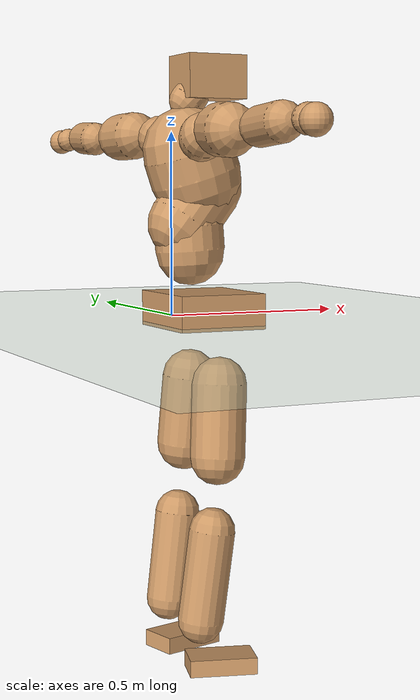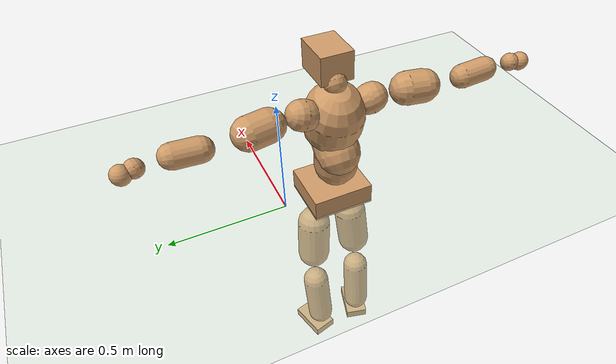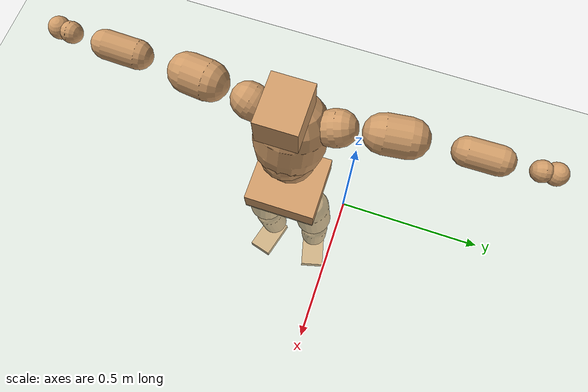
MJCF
<mujoco model="humanoid">
  <compiler coordinate="local" angle="radian"/>
  <default>
    <joint damping="0.0" armature="0.01" stiffness="0.0" limited="true"/>
    <geom conaffinity="1" condim="3" contype="7" margin="0.001" rgba="0.8 0.6 .4 1"/>
  </default>
  <asset>
    <texture type="skybox" builtin="gradient" rgb1=".4 .5 .6" rgb2="0 0 0" width="100" height="100"/>
    <texture builtin="flat" height="1278" mark="cross" markrgb="1 1 1" name="texgeom" random="0.01" rgb1="0.8 0.6 0.4" rgb2="0.8 0.6 0.4" type="cube" width="127"/>
    <texture builtin="checker" height="100" name="texplane" rgb1="0 0 0" rgb2="0.8 0.8 0.8" type="2d" width="100"/>
    <material name="MatPlane" reflectance="0.5" shininess="1" specular="1" texrepeat="60 60" texture="texplane"/>
    <material name="geom" texture="texgeom" texuniform="true"/>
  </asset>
  <worldbody>
    <light cutoff="100" diffuse="1 1 1" dir="-0 0 -1.3" directional="true" exponent="1" pos="0 0 1.3" specular=".1 .1 .1"/>
    <geom conaffinity="1" condim="3" name="floor" pos="0 0 0" rgba="0.8 0.9 0.8 1" size="100 100 .2" type="plane" material="MatPlane"/>
    <body name="Pelvis" pos="0.001 -0.2135 0.0487">
      <freejoint name="Pelvis"/>
      <geom type="box" contype="1" conaffinity="1" density="5359.374832" pos="-0.0049 -0.0000 -0.0141" size="0.1173 0.1291 0.0459" quat="1.0000 0.0000 0.0000 0.0021" name="Pelvis"/>
      <body name="L_Hip" pos="0.0042 0.0843 -0.099">
        <joint name="L_Hip_x" type="hinge" pos="0 0 0" axis="1 0 0" stiffness="1600" damping="160" armature="0.02" range="-180.0000 180.0000"/>
        <joint name="L_Hip_y" type="hinge" pos="0 0 0" axis="0 1 0" stiffness="1600" damping="160" armature="0.02" range="-180.0000 180.0000"/>
        <joint name="L_Hip_z" type="hinge" pos="0 0 0" axis="0 0 1" stiffness="1600" damping="160" armature="0.02" range="-180.0000 180.0000"/>
        <geom type="capsule" contype="1" conaffinity="1" density="2040.816327" size="0.0719" fromto="-0.0064 0.0067 -0.1015 -0.0180 0.0188 -0.2850" name="L_Hip"/>
        <body name="L_Knee" pos="-0.0245 0.0254 -0.3865">
          <joint name="L_Knee_x" type="hinge" pos="0 0 0" axis="1 0 0" stiffness="1600" damping="160" armature="0.02" range="-180.0000 180.0000"/>
          <joint name="L_Knee_y" type="hinge" pos="0 0 0" axis="0 1 0" stiffness="1600" damping="160" armature="0.02" range="-180.0000 180.0000"/>
          <joint name="L_Knee_z" type="hinge" pos="0 0 0" axis="0 0 1" stiffness="1600" damping="160" armature="0.02" range="-180.0000 180.0000"/>
          <geom type="capsule" contype="1" conaffinity="1" density="1234.567901" size="0.0597" fromto="-0.0110 -0.0021 -0.0890 -0.0403 -0.0077 -0.3249" name="L_Knee"/>
          <body name="L_Ankle" pos="-0.0514 -0.0098 -0.4139">
            <joint name="L_Ankle_x" type="hinge" pos="0 0 0" axis="1 0 0" stiffness="1600" damping="160" armature="0.02" range="-180.0000 180.0000"/>
            <joint name="L_Ankle_y" type="hinge" pos="0 0 0" axis="0 1 0" stiffness="1600" damping="160" armature="0.02" range="-180.0000 180.0000"/>
            <joint name="L_Ankle_z" type="hinge" pos="0 0 0" axis="0 0 1" stiffness="1600" damping="160" armature="0.02" range="-180.0000 180.0000"/>
            <geom type="box" contype="1" conaffinity="1" density="999.999943" pos="0.0594 0.0152 -0.0299" size="0.0873 0.0528 0.022" quat="0.9922 0.0000 0.0000 0.1247" name="L_Ankle"/>
            <body name="L_Toe" pos="0.1188 0.0303 -0.0599">
              <joint name="L_Toe_x" type="hinge" pos="0 0 0" axis="1 0 0" stiffness="1000" damping="100" armature="0.02" range="-180.0000 180.0000"/>
              <joint name="L_Toe_y" type="hinge" pos="0 0 0" axis="0 1 0" stiffness="1000" damping="100" armature="0.02" range="-180.0000 180.0000"/>
              <joint name="L_Toe_z" type="hinge" pos="0 0 0" axis="0 0 1" stiffness="1000" damping="100" armature="0.02" range="-180.0000 180.0000"/>
              <geom type="box" contype="1" conaffinity="1" density="8206959.973085" pos="0.0000 0.0000 0.0300" size="0.001 0.0026 0.0011" quat="0.9915 0.0000 0.0000 0.1304" name="L_Toe"/>
            </body>
          </body>
        </body>
      </body>
      <body name="R_Hip" pos="0.0069 -0.0818 -0.1003">
        <joint name="R_Hip_x" type="hinge" pos="0 0 0" axis="1 0 0" stiffness="1600" damping="160" armature="0.02" range="-180.0000 180.0000"/>
        <joint name="R_Hip_y" type="hinge" pos="0 0 0" axis="0 1 0" stiffness="1600" damping="160" armature="0.02" range="-180.0000 180.0000"/>
        <joint name="R_Hip_z" type="hinge" pos="0 0 0" axis="0 0 1" stiffness="1600" damping="160" armature="0.02" range="-180.0000 180.0000"/>
        <geom type="capsule" contype="1" conaffinity="1" density="2040.816327" size="0.0711" fromto="-0.0066 -0.0085 -0.1005 -0.0190 -0.0243 -0.2884" name="R_Hip"/>
        <body name="R_Knee" pos="-0.0257 -0.0328 -0.3889">
          <joint name="R_Knee_x" type="hinge" pos="0 0 0" axis="1 0 0" stiffness="1600" damping="160" armature="0.02" range="-180.0000 180.0000"/>
          <joint name="R_Knee_y" type="hinge" pos="0 0 0" axis="0 1 0" stiffness="1600" damping="160" armature="0.02" range="-180.0000 180.0000"/>
          <joint name="R_Knee_z" type="hinge" pos="0 0 0" axis="0 0 1" stiffness="1600" damping="160" armature="0.02" range="-180.0000 180.0000"/>
          <geom type="capsule" contype="1" conaffinity="1" density="1234.567901" size="0.0594" fromto="-0.0109 0.0026 -0.0886 -0.0402 0.0095 -0.3270" name="R_Knee"/>
          <body name="R_Ankle" pos="-0.0511 0.0121 -0.4157">
            <joint name="R_Ankle_x" type="hinge" pos="0 0 0" axis="1 0 0" stiffness="1600" damping="160" armature="0.02" range="-180.0000 180.0000"/>
            <joint name="R_Ankle_y" type="hinge" pos="0 0 0" axis="0 1 0" stiffness="1600" damping="160" armature="0.02" range="-180.0000 180.0000"/>
            <joint name="R_Ankle_z" type="hinge" pos="0 0 0" axis="0 0 1" stiffness="1600" damping="160" armature="0.02" range="-180.0000 180.0000"/>
            <geom type="box" contype="1" conaffinity="1" density="1000.000038" pos="0.0617 -0.0168 -0.0251" size="0.0879 0.0519 0.022" quat="0.9912 0.0000 0.0000 -0.1325" name="R_Ankle"/>
            <body name="R_Toe" pos="0.1233 -0.0336 -0.0502">
              <joint name="R_Toe_x" type="hinge" pos="0 0 0" axis="1 0 0" stiffness="1000" damping="100" armature="0.02" range="-180.0000 180.0000"/>
              <joint name="R_Toe_y" type="hinge" pos="0 0 0" axis="0 1 0" stiffness="1000" damping="100" armature="0.02" range="-180.0000 180.0000"/>
              <joint name="R_Toe_z" type="hinge" pos="0 0 0" axis="0 0 1" stiffness="1000" damping="100" armature="0.02" range="-180.0000 180.0000"/>
              <geom type="box" contype="1" conaffinity="1" density="7687597.521562" pos="0.0000 0.0000 0.0274" size="0.001 0.0025 0.0012" quat="0.9924 0.0000 0.0000 -0.1231" name="R_Toe"/>
            </body>
          </body>
        </body>
      </body>
      <body name="Torso" pos="-0.0404 -0.0027 0.1147">
        <joint name="Torso_x" type="hinge" pos="0 0 0" axis="1 0 0" stiffness="2000" damping="200" armature="0.02" range="-180.0000 180.0000"/>
        <joint name="Torso_y" type="hinge" pos="0 0 0" axis="0 1 0" stiffness="2000" damping="200" armature="0.02" range="-180.0000 180.0000"/>
        <joint name="Torso_z" type="hinge" pos="0 0 0" axis="0 0 1" stiffness="2000" damping="200" armature="0.02" range="-180.0000 180.0000"/>
        <geom type="capsule" contype="1" conaffinity="1" density="2040.816327" size="0.0898" fromto="-0.0058 0.0019 0.0896 -0.0017 0.0005 0.0256" name="Torso"/>
        <body name="Spine" pos="-0.0075 0.0024 0.1152">
          <joint name="Spine_x" type="hinge" pos="0 0 0" axis="1 0 0" stiffness="2000" damping="200" armature="0.02" range="-180.0000 180.0000"/>
          <joint name="Spine_y" type="hinge" pos="0 0 0" axis="0 1 0" stiffness="2000" damping="200" armature="0.02" range="-180.0000 180.0000"/>
          <joint name="Spine_z" type="hinge" pos="0 0 0" axis="0 0 1" stiffness="2000" damping="200" armature="0.02" range="-180.0000 180.0000"/>
          <geom type="capsule" contype="1" conaffinity="1" density="2040.816327" size="0.0903" fromto="0.0563 0.0033 0.0705 -0.0159 -0.0009 -0.0200" name="Spine"/>
          <body name="Chest" pos="0.0403 0.0023 0.0506">
            <joint name="Chest_x" type="hinge" pos="0 0 0" axis="1 0 0" stiffness="2000" damping="200" armature="0.02" range="-180.0000 180.0000"/>
            <joint name="Chest_y" type="hinge" pos="0 0 0" axis="0 1 0" stiffness="2000" damping="200" armature="0.02" range="-180.0000 180.0000"/>
            <joint name="Chest_z" type="hinge" pos="0 0 0" axis="0 0 1" stiffness="2000" damping="200" armature="0.02" range="-180.0000 180.0000"/>
            <geom type="capsule" contype="1" conaffinity="1" density="2040.816327" size="0.118" fromto="-0.0375 0.0003 0.1119 -0.0160 0.0001 0.0477" name="Chest"/>
            <body name="Neck" pos="-0.0615 0.0018 0.2198">
              <joint name="Neck_x" type="hinge" pos="0 0 0" axis="1 0 0" stiffness="1000" damping="100" armature="0.02" range="-180.0000 180.0000"/>
              <joint name="Neck_y" type="hinge" pos="0 0 0" axis="0 1 0" stiffness="1000" damping="100" armature="0.02" range="-180.0000 180.0000"/>
              <joint name="Neck_z" type="hinge" pos="0 0 0" axis="0 0 1" stiffness="1000" damping="100" armature="0.02" range="-180.0000 180.0000"/>
              <geom type="capsule" contype="1" conaffinity="1" density="1000" size="0.0456" fromto="0.0319 -0.0010 0.0326 0.0205 -0.0006 0.0210" name="Neck"/>
              <body name="Head" pos="0.0524 -0.0016 0.0536">
                <joint name="Head_x" type="hinge" pos="0 0 0" axis="1 0 0" stiffness="1000" damping="100" armature="0.02" range="-180.0000 180.0000"/>
                <joint name="Head_y" type="hinge" pos="0 0 0" axis="0 1 0" stiffness="1000" damping="100" armature="0.02" range="-180.0000 180.0000"/>
                <joint name="Head_z" type="hinge" pos="0 0 0" axis="0 0 1" stiffness="1000" damping="100" armature="0.02" range="-180.0000 180.0000"/>
                <geom type="box" contype="1" conaffinity="1" density="2250.000044" pos="0.0272 0.0002 0.0278" size="0.0805 0.0643 0.0554" quat="1.0000 0.0000 0.0000 0.0036" name="Head"/>
              </body>
            </body>
            <body name="L_Thorax" pos="-0.0466 0.0887 0.1304">
              <joint name="L_Thorax_x" type="hinge" pos="0 0 0" axis="1 0 0" stiffness="1000" damping="100" armature="0.02" range="-180.0000 180.0000"/>
              <joint name="L_Thorax_y" type="hinge" pos="0 0 0" axis="0 1 0" stiffness="1000" damping="100" armature="0.02" range="-180.0000 180.0000"/>
              <joint name="L_Thorax_z" type="hinge" pos="0 0 0" axis="0 0 1" stiffness="1000" damping="100" armature="0.02" range="-180.0000 180.0000"/>
              <geom type="capsule" contype="1" conaffinity="1" density="1000" size="0.0587" fromto="-0.0092 0.0541 0.0206 -0.0060 0.0356 0.0136" name="L_Thorax"/>
              <body name="L_Shoulder" pos="-0.0152 0.0897 0.0342">
                <joint name="L_Shoulder_x" type="hinge" pos="0 0 0" axis="1 0 0" stiffness="1000" damping="100" armature="0.02" range="-720.0000 720.0000"/>
                <joint name="L_Shoulder_y" type="hinge" pos="0 0 0" axis="0 1 0" stiffness="1000" damping="100" armature="0.02" range="-720.0000 720.0000"/>
                <joint name="L_Shoulder_z" type="hinge" pos="0 0 0" axis="0 0 1" stiffness="1000" damping="100" armature="0.02" range="-720.0000 720.0000"/>
                <geom type="capsule" contype="1" conaffinity="1" density="1000" size="0.0632" fromto="-0.0129 0.0922 -0.0031 -0.0237 0.1696 -0.0057" name="L_Shoulder"/>
                <body name="L_Elbow" pos="-0.0366 0.2618 -0.0088">
                  <joint name="L_Elbow_x" type="hinge" pos="0 0 0" axis="1 0 0" stiffness="1000" damping="100" armature="0.02" range="-720.0000 720.0000"/>
                  <joint name="L_Elbow_y" type="hinge" pos="0 0 0" axis="0 1 0" stiffness="1000" damping="100" armature="0.02" range="-720.0000 720.0000"/>
                  <joint name="L_Elbow_z" type="hinge" pos="0 0 0" axis="0 0 1" stiffness="1000" damping="100" armature="0.02" range="-720.0000 720.0000"/>
                  <geom type="capsule" contype="1" conaffinity="1" density="1000" size="0.0459" fromto="0.0007 0.0758 0.0039 0.0016 0.1728 0.0088" name="L_Elbow"/>
                  <body name="L_Wrist" pos="0.0022 0.2487 0.0126">
                    <joint name="L_Wrist_x" type="hinge" pos="0 0 0" axis="1 0 0" stiffness="600" damping="60" armature="0.02" range="-180.0000 180.0000"/>
                    <joint name="L_Wrist_y" type="hinge" pos="0 0 0" axis="0 1 0" stiffness="600" damping="60" armature="0.02" range="-180.0000 180.0000"/>
                    <joint name="L_Wrist_z" type="hinge" pos="0 0 0" axis="0 0 1" stiffness="600" damping="60" armature="0.02" range="-180.0000 180.0000"/>
                    <geom type="capsule" contype="1" conaffinity="1" density="1000" size="0.0335" fromto="-0.0070 0.0426 -0.0050 -0.0074 0.0445 -0.0052" name="L_Wrist"/>
                    <body name="L_Hand" pos="-0.0144 0.0871 -0.0101">
                      <joint name="L_Hand_x" type="hinge" pos="0 0 0" axis="1 0 0" stiffness="600" damping="60" armature="0.02" range="-180.0000 180.0000"/>
                      <joint name="L_Hand_y" type="hinge" pos="0 0 0" axis="0 1 0" stiffness="600" damping="60" armature="0.02" range="-180.0000 180.0000"/>
                      <joint name="L_Hand_z" type="hinge" pos="0 0 0" axis="0 0 1" stiffness="600" damping="60" armature="0.02" range="-180.0000 180.0000"/>
                      <geom type="sphere" contype="1" conaffinity="1" density="1000" size="0.0353" pos="0.0000 0.0000 0.0000" name="L_Hand"/>
                    </body>
                  </body>
                </body>
              </body>
            </body>
            <body name="R_Thorax" pos="-0.0524 -0.0891 0.1284">
              <joint name="R_Thorax_x" type="hinge" pos="0 0 0" axis="1 0 0" stiffness="1000" damping="100" armature="0.02" range="-180.0000 180.0000"/>
              <joint name="R_Thorax_y" type="hinge" pos="0 0 0" axis="0 1 0" stiffness="1000" damping="100" armature="0.02" range="-180.0000 180.0000"/>
              <joint name="R_Thorax_z" type="hinge" pos="0 0 0" axis="0 0 1" stiffness="1000" damping="100" armature="0.02" range="-180.0000 180.0000"/>
              <geom type="capsule" contype="1" conaffinity="1" density="1000" size="0.0586" fromto="-0.0086 -0.0546 0.0195 -0.0064 -0.0406 0.0145" name="R_Thorax"/>
              <body name="R_Shoulder" pos="-0.0151 -0.0951 0.034">
                <joint name="R_Shoulder_x" type="hinge" pos="0 0 0" axis="1 0 0" stiffness="1000" damping="100" armature="0.02" range="-720.0000 720.0000"/>
                <joint name="R_Shoulder_y" type="hinge" pos="0 0 0" axis="0 1 0" stiffness="1000" damping="100" armature="0.02" range="-720.0000 720.0000"/>
                <joint name="R_Shoulder_z" type="hinge" pos="0 0 0" axis="0 0 1" stiffness="1000" damping="100" armature="0.02" range="-720.0000 720.0000"/>
                <geom type="capsule" contype="1" conaffinity="1" density="1000" size="0.0647" fromto="-0.0108 -0.0940 -0.0044 -0.0189 -0.1646 -0.0077" name="R_Shoulder"/>
                <body name="R_Elbow" pos="-0.0297 -0.2585 -0.0122">
                  <joint name="R_Elbow_x" type="hinge" pos="0 0 0" axis="1 0 0" stiffness="1000" damping="100" armature="0.02" range="-720.0000 720.0000"/>
                  <joint name="R_Elbow_y" type="hinge" pos="0 0 0" axis="0 1 0" stiffness="1000" damping="100" armature="0.02" range="-720.0000 720.0000"/>
                  <joint name="R_Elbow_z" type="hinge" pos="0 0 0" axis="0 0 1" stiffness="1000" damping="100" armature="0.02" range="-720.0000 720.0000"/>
                  <geom type="capsule" contype="1" conaffinity="1" density="1000" size="0.0468" fromto="0.0006 -0.0766 0.0049 0.0013 -0.1817 0.0116" name="R_Elbow"/>
                  <body name="R_Wrist" pos="0.0019 -0.2583 0.0165">
                    <joint name="R_Wrist_x" type="hinge" pos="0 0 0" axis="1 0 0" stiffness="600" damping="60" armature="0.02" range="-180.0000 180.0000"/>
                    <joint name="R_Wrist_y" type="hinge" pos="0 0 0" axis="0 1 0" stiffness="600" damping="60" armature="0.02" range="-180.0000 180.0000"/>
                    <joint name="R_Wrist_z" type="hinge" pos="0 0 0" axis="0 0 1" stiffness="600" damping="60" armature="0.02" range="-180.0000 180.0000"/>
                    <geom type="capsule" contype="1" conaffinity="1" density="1000" size="0.0346" fromto="-0.0058 -0.0432 -0.0038 -0.0060 -0.0452 -0.0040" name="R_Wrist"/>
                    <body name="R_Hand" pos="-0.0118 -0.0883 -0.0078">
                      <joint name="R_Hand_x" type="hinge" pos="0 0 0" axis="1 0 0" stiffness="600" damping="60" armature="0.02" range="-180.0000 180.0000"/>
                      <joint name="R_Hand_y" type="hinge" pos="0 0 0" axis="0 1 0" stiffness="600" damping="60" armature="0.02" range="-180.0000 180.0000"/>
                      <joint name="R_Hand_z" type="hinge" pos="0 0 0" axis="0 0 1" stiffness="600" damping="60" armature="0.02" range="-180.0000 180.0000"/>
                      <geom type="sphere" contype="1" conaffinity="1" density="1000" size="0.0358" pos="0.0000 0.0000 0.0000" name="R_Hand"/>
                    </body>
                  </body>
                </body>
              </body>
            </body>
          </body>
        </body>
      </body>
    </body>
  </worldbody>
  <actuator>
    <motor name="L_Hip_x" joint="L_Hip_x" gear="500"/>
    <motor name="L_Hip_y" joint="L_Hip_y" gear="500"/>
    <motor name="L_Hip_z" joint="L_Hip_z" gear="500"/>
    <motor name="L_Knee_x" joint="L_Knee_x" gear="500"/>
    <motor name="L_Knee_y" joint="L_Knee_y" gear="500"/>
    <motor name="L_Knee_z" joint="L_Knee_z" gear="500"/>
    <motor name="L_Ankle_x" joint="L_Ankle_x" gear="500"/>
    <motor name="L_Ankle_y" joint="L_Ankle_y" gear="500"/>
    <motor name="L_Ankle_z" joint="L_Ankle_z" gear="500"/>
    <motor name="L_Toe_x" joint="L_Toe_x" gear="500"/>
    <motor name="L_Toe_y" joint="L_Toe_y" gear="500"/>
    <motor name="L_Toe_z" joint="L_Toe_z" gear="500"/>
    <motor name="R_Hip_x" joint="R_Hip_x" gear="500"/>
    <motor name="R_Hip_y" joint="R_Hip_y" gear="500"/>
    <motor name="R_Hip_z" joint="R_Hip_z" gear="500"/>
    <motor name="R_Knee_x" joint="R_Knee_x" gear="500"/>
    <motor name="R_Knee_y" joint="R_Knee_y" gear="500"/>
    <motor name="R_Knee_z" joint="R_Knee_z" gear="500"/>
    <motor name="R_Ankle_x" joint="R_Ankle_x" gear="500"/>
    <motor name="R_Ankle_y" joint="R_Ankle_y" gear="500"/>
    <motor name="R_Ankle_z" joint="R_Ankle_z" gear="500"/>
    <motor name="R_Toe_x" joint="R_Toe_x" gear="500"/>
    <motor name="R_Toe_y" joint="R_Toe_y" gear="500"/>
    <motor name="R_Toe_z" joint="R_Toe_z" gear="500"/>
    <motor name="Torso_x" joint="Torso_x" gear="500"/>
    <motor name="Torso_y" joint="Torso_y" gear="500"/>
    <motor name="Torso_z" joint="Torso_z" gear="500"/>
    <motor name="Spine_x" joint="Spine_x" gear="500"/>
    <motor name="Spine_y" joint="Spine_y" gear="500"/>
    <motor name="Spine_z" joint="Spine_z" gear="500"/>
    <motor name="Chest_x" joint="Chest_x" gear="500"/>
    <motor name="Chest_y" joint="Chest_y" gear="500"/>
    <motor name="Chest_z" joint="Chest_z" gear="500"/>
    <motor name="Neck_x" joint="Neck_x" gear="500"/>
    <motor name="Neck_y" joint="Neck_y" gear="500"/>
    <motor name="Neck_z" joint="Neck_z" gear="500"/>
    <motor name="Head_x" joint="Head_x" gear="500"/>
    <motor name="Head_y" joint="Head_y" gear="500"/>
    <motor name="Head_z" joint="Head_z" gear="500"/>
    <motor name="L_Thorax_x" joint="L_Thorax_x" gear="500"/>
    <motor name="L_Thorax_y" joint="L_Thorax_y" gear="500"/>
    <motor name="L_Thorax_z" joint="L_Thorax_z" gear="500"/>
    <motor name="L_Shoulder_x" joint="L_Shoulder_x" gear="500"/>
    <motor name="L_Shoulder_y" joint="L_Shoulder_y" gear="500"/>
    <motor name="L_Shoulder_z" joint="L_Shoulder_z" gear="500"/>
    <motor name="L_Elbow_x" joint="L_Elbow_x" gear="500"/>
    <motor name="L_Elbow_y" joint="L_Elbow_y" gear="500"/>
    <motor name="L_Elbow_z" joint="L_Elbow_z" gear="500"/>
    <motor name="L_Wrist_x" joint="L_Wrist_x" gear="500"/>
    <motor name="L_Wrist_y" joint="L_Wrist_y" gear="500"/>
    <motor name="L_Wrist_z" joint="L_Wrist_z" gear="500"/>
    <motor name="L_Hand_x" joint="L_Hand_x" gear="500"/>
    <motor name="L_Hand_y" joint="L_Hand_y" gear="500"/>
    <motor name="L_Hand_z" joint="L_Hand_z" gear="500"/>
    <motor name="R_Thorax_x" joint="R_Thorax_x" gear="500"/>
    <motor name="R_Thorax_y" joint="R_Thorax_y" gear="500"/>
    <motor name="R_Thorax_z" joint="R_Thorax_z" gear="500"/>
    <motor name="R_Shoulder_x" joint="R_Shoulder_x" gear="500"/>
    <motor name="R_Shoulder_y" joint="R_Shoulder_y" gear="500"/>
    <motor name="R_Shoulder_z" joint="R_Shoulder_z" gear="500"/>
    <motor name="R_Elbow_x" joint="R_Elbow_x" gear="500"/>
    <motor name="R_Elbow_y" joint="R_Elbow_y" gear="500"/>
    <motor name="R_Elbow_z" joint="R_Elbow_z" gear="500"/>
    <motor name="R_Wrist_x" joint="R_Wrist_x" gear="500"/>
    <motor name="R_Wrist_y" joint="R_Wrist_y" gear="500"/>
    <motor name="R_Wrist_z" joint="R_Wrist_z" gear="500"/>
    <motor name="R_Hand_x" joint="R_Hand_x" gear="500"/>
    <motor name="R_Hand_y" joint="R_Hand_y" gear="500"/>
    <motor name="R_Hand_z" joint="R_Hand_z" gear="500"/>
  </actuator>
  <contact>
    <exclude body1="Torso" body2="Chest"/>
    <exclude body1="Head" body2="Chest"/>
    <exclude body1="R_Knee" body2="R_Toe"/>
    <exclude body1="R_Knee" body2="L_Ankle"/>
    <exclude body1="R_Knee" body2="L_Toe"/>
    <exclude body1="L_Knee" body2="L_Toe"/>
    <exclude body1="L_Knee" body2="R_Ankle"/>
    <exclude body1="L_Knee" body2="R_Toe"/>
    <exclude body1="L_Shoulder" body2="Chest"/>
    <exclude body1="R_Shoulder" body2="Chest"/>
  </contact>
  <sensor/>
  <size njmax="700" nconmax="700"/>
</mujoco>
